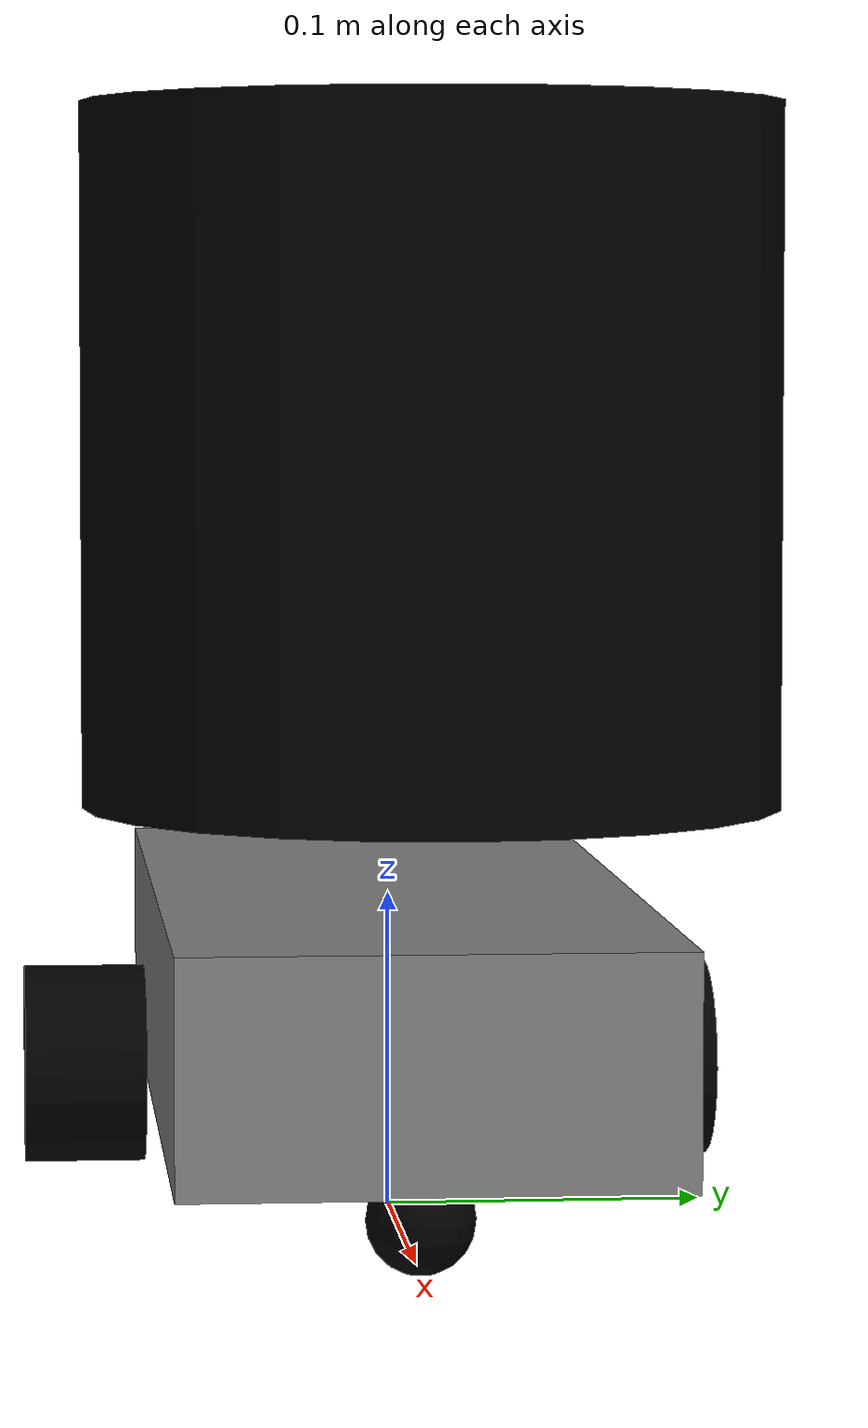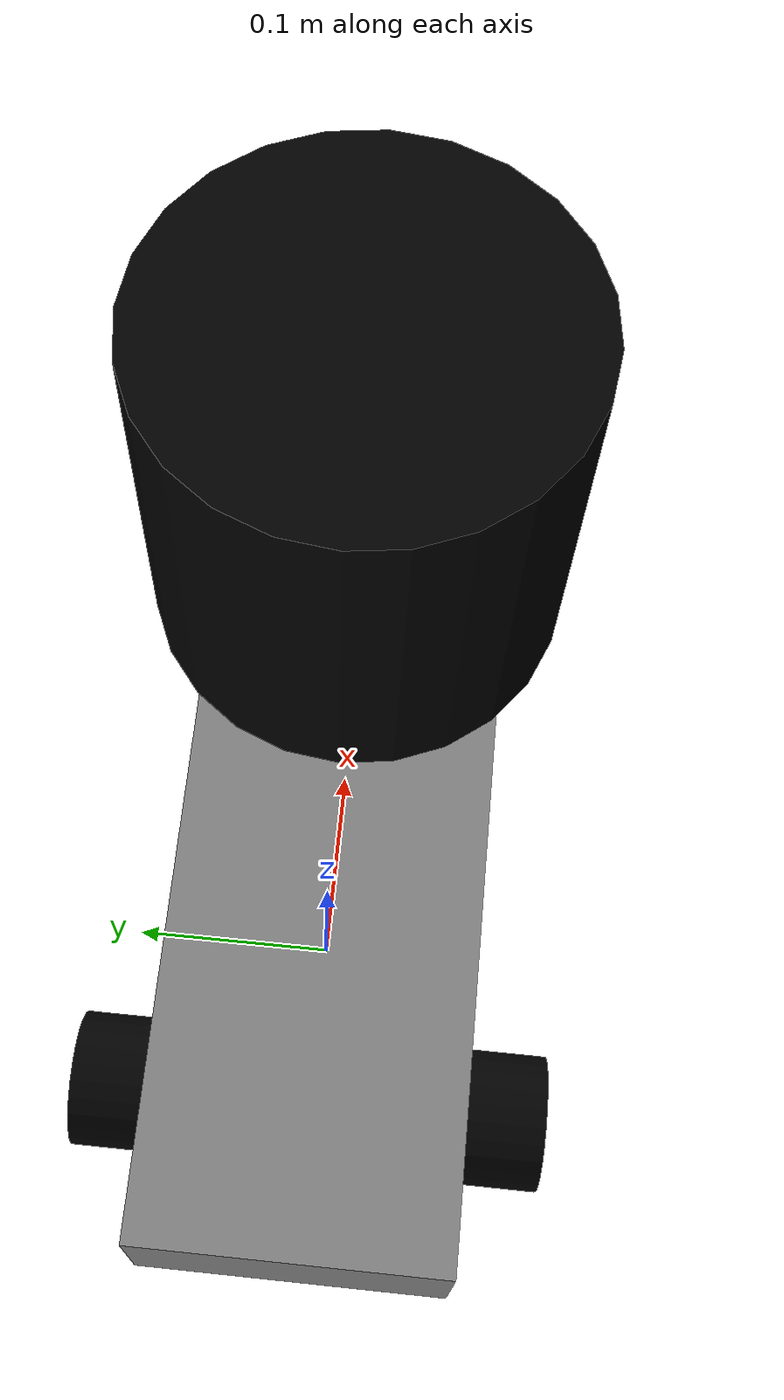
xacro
<?xml version="1.0"?>
<robot name="my_robot" xmlns:xacro="http://www.ros.org/wiki/xacro">

    <xacro:include filename="common_properties.xacro" />
    <xacro:include filename="mobile_base.xacro" />
    <xacro:include filename="mobile_base.ros2_control.xacro" />
    <xacro:include filename="lidar.xacro"/>

</robot>

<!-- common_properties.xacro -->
<robot xmlns:xacro="http://www.ros.org/wiki/xacro">

    <material name="blue">
        <color rgba="0 0 0.5 1" />
    </material>

    <material name="grey">
        <color rgba="0.5 0.5 0.5 1" />
    </material>

    <material name="yellow">
        <color rgba="1.0 1.0 0 1" />
    </material>

    <material name="orange">
        <color rgba="1.0 0.5 0 1" />
    </material>

    <material name="black">
        <color rgba="0 0 0 1" />
    </material>

</robot>

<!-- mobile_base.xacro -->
<robot xmlns:xacro="http://www.ros.org/wiki/xacro">

    <xacro:property name="base_length" value="0.35" />
    <xacro:property name="base_width" value="0.15" />
    <xacro:property name="base_height" value="0.07" />
    <xacro:property name="wheel_radius" value="0.033" />
    <xacro:property name="wheel_length" value="0.04" />

    <link name="base_footprint" />

    <link name="base_link">
        <visual>
            <geometry>
                <box size="${base_length} ${base_width} ${base_height}" />
            </geometry>
            <origin xyz="0 0 ${base_height / 2.0}" rpy="0 0 0" />
            <material name="grey" />
        </visual>
    </link>

    <xacro:macro name="wheel_link" params="prefix">
        <link name="${prefix}_wheel_link">
            <visual>
                <geometry>
                    <cylinder radius="${wheel_radius}" length="${wheel_length}" />
                </geometry>
                <origin xyz="0 0 0" rpy="${pi / 2.0} 0 0" />
                <material name="black" />
            </visual>
        </link>
    </xacro:macro>

    <xacro:wheel_link prefix="right" />
    <xacro:wheel_link prefix="left" />

    <link name="caster_wheel_link">
        <visual>
            <geometry>
                <sphere radius="${wheel_radius / 2.0}" />
            </geometry>
            <origin xyz="0 0 0" rpy="0 0 0" />
            <material name="black"/>
        </visual>
    </link>

    <joint name="base_joint" type="fixed">
        <parent link="base_footprint" />
        <child link="base_link" />
        <origin xyz="0 0 ${wheel_radius}" rpy="0 0 0"/>
    </joint>

    <joint name="base_right_wheel_joint" type="continuous">
        <parent link="base_link" />
        <child link="right_wheel_link" />
        <origin xyz="${-base_length / 4.0} ${-(base_width + wheel_length) / 2.0} 0" rpy="0 0 0" />
        <axis xyz="0 1 0" />
    </joint>

    <joint name="base_left_wheel_joint" type="continuous">
        <parent link="base_link" />
        <child link="left_wheel_link" />
        <origin xyz="${-base_length / 4.0} ${(base_width + wheel_length) / 2.0} 0" rpy="0 0 0" />
        <axis xyz="0 1 0" />
    </joint>

    <joint name="base_caster_wheel_joint" type="fixed">
        <parent link="base_link" />
        <child link="caster_wheel_link" />
        <origin xyz="${base_length / 3.0} 0 ${-wheel_radius / 2.0}" rpy="0 0 0" />
    </joint>

</robot>

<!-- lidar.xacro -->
<robot xmlns:xacro="http://www.ros.org/wiki/xacro" name="lidar_model">

 <xacro:property name="_10cm" value="0.1" />
 <xacro:property name="lidar_length" value="0.2" />
 <xacro:property name="lidar_radius" value="0.1"/>

   <!-- Lidar Joint -->
  <joint name="lidar_joint" type="fixed">
    <parent link="base_link"/>
    <child link="lidar_link"/>
    <origin xyz="0.15 0 0.2" rpy="0 0 0"/>
  </joint>

  <!-- Lidar Link -->
  <link name="lidar_link">
    <visual>
      <geometry>
        <cylinder length="${lidar_length}" radius="${lidar_radius}"/>
      </geometry>
      <origin xyz="0 0 0.01" rpy="0 0 0"/>
      <material name="black"/>

    </visual>

    <collision>
      <geometry>
        <cylinder length="${lidar_length}" radius="${lidar_radius}"/>
      </geometry>
      <origin xyz="0 0 0.01" rpy="0 0 0"/>
    </collision>

    <inertial>
      <mass value="0.2"/>
      <origin xyz="0 0 0.01" rpy="0 0 0"/>
      <inertia ixx="0.0001" ixy="0" ixz="0"
               iyy="0.0001" iyz="0"
               izz="0.0001"/>
    </inertial>
  </link>

  <!-- Frame used by lidar driver -->

</robot>
